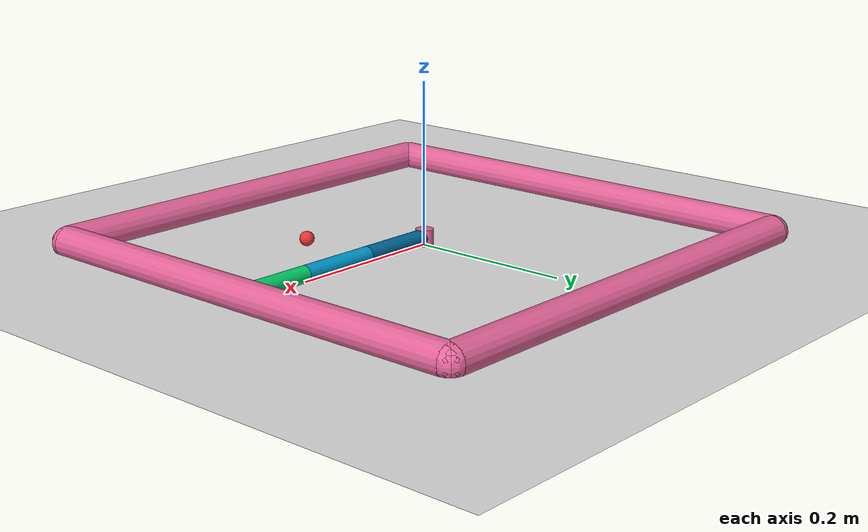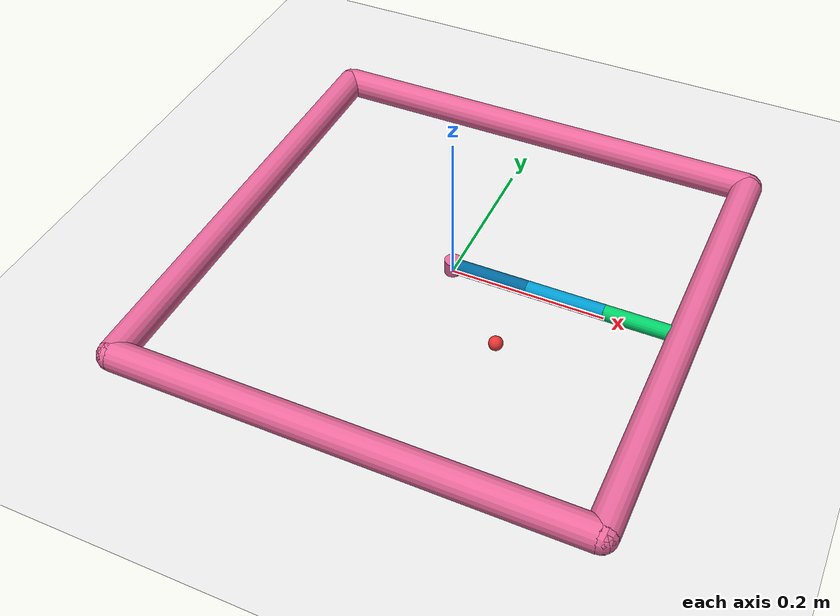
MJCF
<mujoco model="reacher">
    <compiler angle="radian" inertiafromgeom="true"/>
    <default>
        <joint armature="1" damping="1" limited="true"/>
        <geom contype="0" friction="1 0.1 0.1" rgba="0.7 0.7 0 1"/>
    </default>

    <option gravity="0 0 -9.81" integrator="RK4" timestep="0.01"/>

    <worldbody>
        <!-- 地面 -->
        <geom conaffinity="0" contype="0" name="ground" pos="0 0 0" rgba="0.9 0.9 0.9 1" size="1 1 10" type="plane"/>
        <!-- 场地边界 -->
        <geom fromto="-.3 -.3 .01 .3 -.3 .01" name="sideS" rgba="0.9 0.4 0.6 1" size=".02" type="capsule"/>
        <geom fromto=" .3 -.3 .01 .3  .3 .01" name="sideE" rgba="0.9 0.4 0.6 1" size=".02" type="capsule"/>
        <geom fromto="-.3  .3 .01 .3  .3 .01" name="sideN" rgba="0.9 0.4 0.6 1" size=".02" type="capsule"/>
        <geom fromto="-.3 -.3 .01 -.3 .3 .01" name="sideW" rgba="0.9 0.4 0.6 1" size=".02" type="capsule"/>

        <!-- 机械臂根部 -->
        <geom fromto="0 0 0 0 0 0.02" name="root" rgba="0.9 0.4 0.6 1" size=".011" type="cylinder"/>

        <!-- 第一段机械臂 -->
        <body name="body0" pos="0 0 .01">
            <geom fromto="0 0 0 0.1 0 0" name="link0" rgba="0.0 0.4 0.6 1" size=".01" type="capsule"/>
            <joint axis="0 0 1" limited="true" name="joint0" pos="0 0 0" range="-3.0 3.0" type="hinge"/>

            <!-- 第二段机械臂 -->
            <body name="body1" pos="0.1 0 0">
                <geom fromto="0 0 0 0.1 0 0" name="link1" rgba="0.0 0.6 0.8 1" size=".01" type="capsule"/>
                <joint axis="0 0 1" limited="true" name="joint1" pos="0 0 0" range="-3.0 3.0" type="hinge"/>

                <!-- 第三段机械臂 -->
                <body name="body2" pos="0.1 0 0">
                    <geom fromto="0 0 0 0.1 0 0" name="link2" rgba="0.0 0.8 0.4 1" size=".01" type="capsule"/>
                    <joint axis="0 0 1" limited="true" name="joint2" pos="0 0 0" range="-3.0 3.0" type="hinge"/>

                    <!-- 指尖 -->
                    <body name="fingertip" pos="0.11 0 0">
                        <geom contype="0" name="fingertip" pos="0 0 0" rgba="0.0 0.8 0.6 1" size=".01" type="sphere"/>
                    </body>
                </body>
            </body>
        </body>

        <!-- 目标物体 -->
        <body name="target" pos=".1 -.1 .01">
            <joint armature="0" axis="1 0 0" damping="0" limited="true" name="target_x" pos="0 0 0" range="-.27 .27" ref=".1" stiffness="0" type="slide"/>
            <joint armature="0" axis="0 1 0" damping="0" limited="true" name="target_y" pos="0 0 0" range="-.27 .27" ref="-.1" stiffness="0" type="slide"/>
            <geom conaffinity="0" contype="0" name="target" pos="0 0 0" rgba="0.9 0.2 0.2 1" size=".009" type="sphere"/>
        </body>
    </worldbody>

    <!-- 电机控制器 -->
    <actuator>
        <motor ctrllimited="true" ctrlrange="-1.0 1.0" gear="200.0" joint="joint0"/>
        <motor ctrllimited="true" ctrlrange="-1.0 1.0" gear="200.0" joint="joint1"/>
        <motor ctrllimited="true" ctrlrange="-1.0 1.0" gear="200.0" joint="joint2"/>
    </actuator>
</mujoco>
